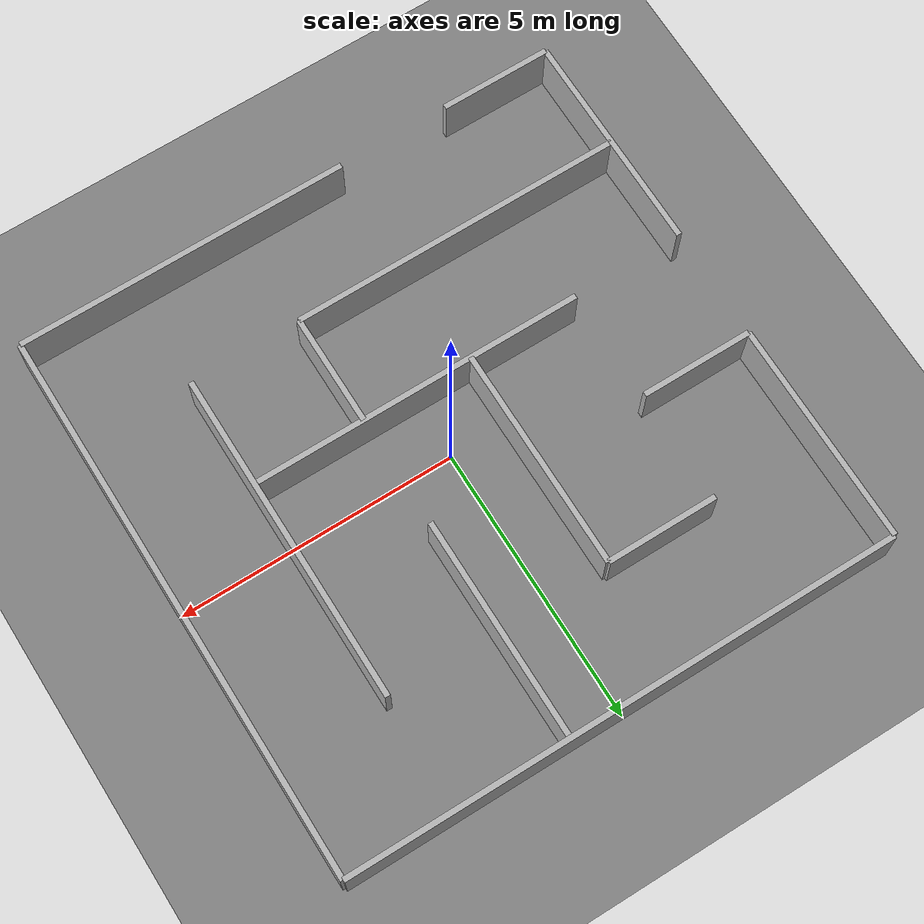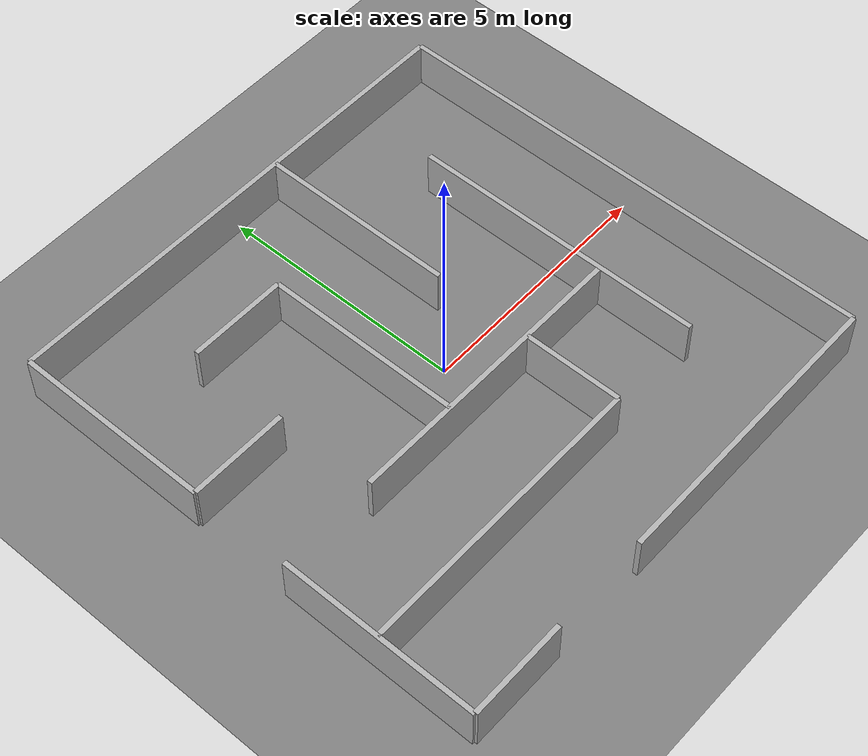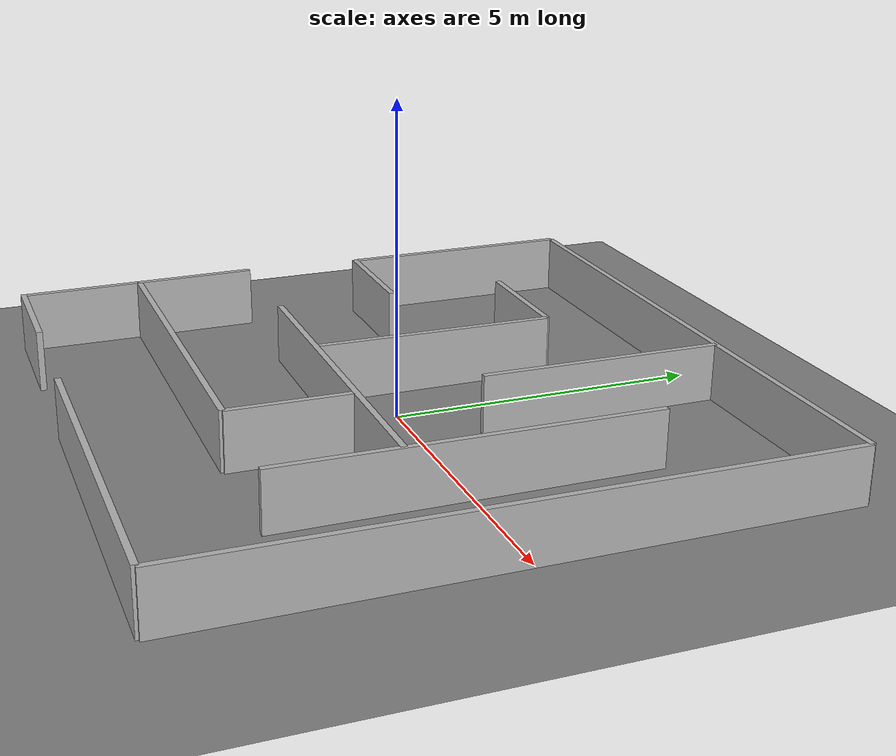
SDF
<sdf version="1.10">
 <world name="default">
  <gravity>0 0 -9.8000000000000007</gravity>
  <magnetic_field>6.0000000000000002e-06 2.3e-05 -4.1999999999999998e-05</magnetic_field>
  <atmosphere type="adiabatic"/>
  <physics name="default_physics" default="false" type="ode">
   <max_step_size>0.001</max_step_size>
   <real_time_factor>1</real_time_factor>
   <real_time_update_rate>1000</real_time_update_rate>
  </physics>
  <scene>
   <ambient>0.400000006 0.400000006 0.400000006 1</ambient>
   <background>0.699999988 0.699999988 0.699999988 1</background>
   <shadows>true</shadows>
  </scene>
  <audio><device>default</device></audio>
  <spherical_coordinates>
   <surface_model>EARTH_WGS84</surface_model>
   <latitude_deg>0</latitude_deg>
   <longitude_deg>0</longitude_deg>
   <elevation>0</elevation>
   <heading_deg>0</heading_deg>
  </spherical_coordinates>
  <model name="ground_plane">
   <static>true</static>
   <link name="link">
    <collision name="collision">
     <geometry><plane><normal>0 0 1</normal><size>100 100</size></plane></geometry>
     <surface>
      <contact><collide_bitmask>65535</collide_bitmask></contact>
      <friction><ode><mu>100</mu><mu2>50</mu2></ode></friction>
     </surface>
    </collision>
    <visual name="visual">
     <cast_shadows>false</cast_shadows>
     <geometry><plane><normal>0 0 1</normal><size>100 100</size></plane></geometry>
     <material>
      <ambient>0.5 0.5 0.5 1</ambient>
      <diffuse>0.5 0.5 0.5 1</diffuse>
      <specular>0.100000001 0.100000001 0.100000001 1</specular>
      <emissive>0 0 0 1</emissive>
     </material>
    </visual>
    <inertial>
     <mass>1</mass>
     <inertia><ixx>1</ixx><ixy>0</ixy><ixz>0</ixz><iyy>1</iyy><iyz>0</iyz><izz>1</izz></inertia>
    </inertial>
   </link>
  </model>
  <model name="s_maze">
   <link name="link_0_clone">
    <inertial>
     <mass>2000</mass>
     <inertia>
      <ixx>16833.299999999999</ixx>
      <ixy>0</ixy>
      <ixz>0</ixz>
      <iyy>168.333</iyy>
      <iyz>0</iyz>
      <izz>16668.299999999999</izz>
     </inertia>
    </inertial>
    <pose>5 0 0 0 0 0</pose>
    <visual name="visual">
     <geometry><box><size>0.10000000000000001 10 1</size></box></geometry>
     <material>
      <lighting>true</lighting>
      <shader type="vertex"><normal_map>__default__</normal_map></shader>
      <ambient>0.300000012 0.300000012 0.300000012 1</ambient>
      <diffuse>0.699999988 0.699999988 0.699999988 1</diffuse>
      <specular>0.00999999978 0.00999999978 0.00999999978 1</specular>
      <emissive>0 0 0 1</emissive>
     </material>
    </visual>
    <collision name="collision">
     <geometry><box><size>0.10000000000000001 10 1</size></box></geometry>
     <surface>
      <friction>
       <ode><mu>1</mu><mu2>1</mu2><fdir1>0 0 0</fdir1><slip1>0</slip1><slip2>0</slip2></ode>
       <torsional>
        <coefficient>1</coefficient>
        <patch_radius>0</patch_radius>
        <surface_radius>0</surface_radius>
        <use_patch_radius>true</use_patch_radius>
        <ode><slip>0</slip></ode>
       </torsional>
      </friction>
      <bounce><restitution_coefficient>0</restitution_coefficient><threshold>1000000</threshold></bounce>
      <contact>
       <collide_without_contact>false</collide_without_contact>
       <collide_without_contact_bitmask>1</collide_without_contact_bitmask>
       <collide_bitmask>1</collide_bitmask>
       <ode>
        <soft_cfm>0</soft_cfm>
        <soft_erp>0.20000000000000001</soft_erp>
        <kp>10000000000000</kp>
        <kd>1</kd>
        <max_vel>0.01</max_vel>
        <min_depth>0</min_depth>
       </ode>
       <bullet>
        <split_impulse>true</split_impulse>
        <split_impulse_penetration_threshold>-0.01</split_impulse_penetration_threshold>
        <soft_cfm>0</soft_cfm>
        <soft_erp>0.20000000000000001</soft_erp>
        <kp>10000000000000</kp>
        <kd>1</kd>
       </bullet>
      </contact>
     </surface>
    </collision>
   </link>
   <link name="link_0_clone_0_clone">
    <inertial>
     <mass>400</mass>
     <inertia>
      <ixx>166.667</ixx>
      <ixy>0</ixy>
      <ixz>0</ixz>
      <iyy>33.666699999999999</iyy>
      <iyz>0</iyz>
      <izz>133.667</izz>
     </inertia>
    </inertial>
    <pose>0.99999866355878742 -1.9999995539764424 -2.6095737237774586e-09 0 -4.3368086899420177e-19 0</pose>
    <visual name="visual">
     <geometry><box><size>0.10000000000000001 2 1</size></box></geometry>
     <material>
      <lighting>true</lighting>
      <shader type="vertex"><normal_map>__default__</normal_map></shader>
      <ambient>0.300000012 0.300000012 0.300000012 1</ambient>
      <diffuse>0.699999988 0.699999988 0.699999988 1</diffuse>
      <specular>0.00999999978 0.00999999978 0.00999999978 1</specular>
      <emissive>0 0 0 1</emissive>
     </material>
    </visual>
    <collision name="collision">
     <geometry><box><size>0.10000000000000001 2 1</size></box></geometry>
     <surface>
      <friction>
       <ode><mu>1</mu><mu2>1</mu2><fdir1>0 0 0</fdir1><slip1>0</slip1><slip2>0</slip2></ode>
       <torsional>
        <coefficient>1</coefficient>
        <patch_radius>0</patch_radius>
        <surface_radius>0</surface_radius>
        <use_patch_radius>true</use_patch_radius>
        <ode><slip>0</slip></ode>
       </torsional>
      </friction>
      <bounce><restitution_coefficient>0</restitution_coefficient><threshold>1000000</threshold></bounce>
      <contact>
       <collide_without_contact>false</collide_without_contact>
       <collide_without_contact_bitmask>1</collide_without_contact_bitmask>
       <collide_bitmask>1</collide_bitmask>
       <ode>
        <soft_cfm>0</soft_cfm>
        <soft_erp>0.20000000000000001</soft_erp>
        <kp>10000000000000</kp>
        <kd>1</kd>
        <max_vel>0.01</max_vel>
        <min_depth>0</min_depth>
       </ode>
       <bullet>
        <split_impulse>true</split_impulse>
        <split_impulse_penetration_threshold>-0.01</split_impulse_penetration_threshold>
        <soft_cfm>0</soft_cfm>
        <soft_erp>0.20000000000000001</soft_erp>
        <kp>10000000000000</kp>
        <kd>1</kd>
       </bullet>
      </contact>
     </surface>
    </collision>
   </link>
   <link name="link_0_clone_1_clone">
    <inertial>
     <mass>2000</mass>
     <inertia>
      <ixx>16833.299999999999</ixx>
      <ixy>0</ixy>
      <ixz>0</ixz>
      <iyy>168.333</iyy>
      <iyz>0</iyz>
      <izz>16668.299999999999</izz>
     </inertia>
    </inertial>
    <pose>8.1644602190067417e-10 5.0000022276348233 -1.0922676207947291e-08 -1.0925842687578042e-09 -7.0588231558850749e-11 1.5707997772368563</pose>
    <visual name="visual">
     <geometry><box><size>0.10000000000000001 10 1</size></box></geometry>
     <material>
      <lighting>true</lighting>
      <shader type="vertex"><normal_map>__default__</normal_map></shader>
      <ambient>0.300000012 0.300000012 0.300000012 1</ambient>
      <diffuse>0.699999988 0.699999988 0.699999988 1</diffuse>
      <specular>0.00999999978 0.00999999978 0.00999999978 1</specular>
      <emissive>0 0 0 1</emissive>
     </material>
    </visual>
    <collision name="collision">
     <geometry><box><size>0.10000000000000001 10 1</size></box></geometry>
     <surface>
      <friction>
       <ode><mu>1</mu><mu2>1</mu2><fdir1>0 0 0</fdir1><slip1>0</slip1><slip2>0</slip2></ode>
       <torsional>
        <coefficient>1</coefficient>
        <patch_radius>0</patch_radius>
        <surface_radius>0</surface_radius>
        <use_patch_radius>true</use_patch_radius>
        <ode><slip>0</slip></ode>
       </torsional>
      </friction>
      <bounce><restitution_coefficient>0</restitution_coefficient><threshold>1000000</threshold></bounce>
      <contact>
       <collide_without_contact>false</collide_without_contact>
       <collide_without_contact_bitmask>1</collide_without_contact_bitmask>
       <collide_bitmask>1</collide_bitmask>
       <ode>
        <soft_cfm>0</soft_cfm>
        <soft_erp>0.20000000000000001</soft_erp>
        <kp>10000000000000</kp>
        <kd>1</kd>
        <max_vel>0.01</max_vel>
        <min_depth>0</min_depth>
       </ode>
       <bullet>
        <split_impulse>true</split_impulse>
        <split_impulse_penetration_threshold>-0.01</split_impulse_penetration_threshold>
        <soft_cfm>0</soft_cfm>
        <soft_erp>0.20000000000000001</soft_erp>
        <kp>10000000000000</kp>
        <kd>1</kd>
       </bullet>
      </contact>
     </surface>
    </collision>
   </link>
   <link name="link_0_clone_1_clone_0">
    <inertial>
     <mass>1200</mass>
     <inertia><ixx>3700</ixx><ixy>0</ixy><ixz>0</ixz><iyy>101</iyy><iyz>0</iyz><izz>3601</izz></inertia>
    </inertial>
    <pose>-2.0000022273475881 -2.9999991081184154 -5.0774681126242172e-09 -1.0925842687578042e-09 -7.0588231558850749e-11 1.5707997772368563</pose>
    <visual name="visual">
     <geometry><box><size>0.10000000000000001 6 1</size></box></geometry>
     <material>
      <lighting>true</lighting>
      <shader type="vertex"><normal_map>__default__</normal_map></shader>
      <ambient>0.300000012 0.300000012 0.300000012 1</ambient>
      <diffuse>0.699999988 0.699999988 0.699999988 1</diffuse>
      <specular>0.00999999978 0.00999999978 0.00999999978 1</specular>
      <emissive>0 0 0 1</emissive>
     </material>
    </visual>
    <collision name="collision">
     <geometry><box><size>0.10000000000000001 6 1</size></box></geometry>
     <surface>
      <friction>
       <ode><mu>1</mu><mu2>1</mu2><fdir1>0 0 0</fdir1><slip1>0</slip1><slip2>0</slip2></ode>
       <torsional>
        <coefficient>1</coefficient>
        <patch_radius>0</patch_radius>
        <surface_radius>0</surface_radius>
        <use_patch_radius>true</use_patch_radius>
        <ode><slip>0</slip></ode>
       </torsional>
      </friction>
      <bounce><restitution_coefficient>0</restitution_coefficient><threshold>1000000</threshold></bounce>
      <contact>
       <collide_without_contact>false</collide_without_contact>
       <collide_without_contact_bitmask>1</collide_without_contact_bitmask>
       <collide_bitmask>1</collide_bitmask>
       <ode>
        <soft_cfm>0</soft_cfm>
        <soft_erp>0.20000000000000001</soft_erp>
        <kp>10000000000000</kp>
        <kd>1</kd>
        <max_vel>0.01</max_vel>
        <min_depth>0</min_depth>
       </ode>
       <bullet>
        <split_impulse>true</split_impulse>
        <split_impulse_penetration_threshold>-0.01</split_impulse_penetration_threshold>
        <soft_cfm>0</soft_cfm>
        <soft_erp>0.20000000000000001</soft_erp>
        <kp>10000000000000</kp>
        <kd>1</kd>
       </bullet>
      </contact>
     </surface>
    </collision>
   </link>
   <link name="link_0_clone_1_clone_0_clone">
    <inertial>
     <mass>1200</mass>
     <inertia><ixx>3700</ixx><ixy>0</ixy><ixz>0</ixz><iyy>101</iyy><iyz>0</iyz><izz>3601</izz></inertia>
    </inertial>
    <pose>-1.336277922536766e-06 -0.99999910844947815 -4.7941090541847586e-09 -1.0925842687578042e-09 -7.0588231558850749e-11 1.5707997772368563</pose>
    <visual name="visual">
     <geometry><box><size>0.10000000000000001 6 1</size></box></geometry>
     <material>
      <lighting>true</lighting>
      <shader type="vertex"><normal_map>__default__</normal_map></shader>
      <ambient>0.300000012 0.300000012 0.300000012 1</ambient>
      <diffuse>0.699999988 0.699999988 0.699999988 1</diffuse>
      <specular>0.00999999978 0.00999999978 0.00999999978 1</specular>
      <emissive>0 0 0 1</emissive>
     </material>
    </visual>
    <collision name="collision">
     <geometry><box><size>0.10000000000000001 6 1</size></box></geometry>
     <surface>
      <friction>
       <ode><mu>1</mu><mu2>1</mu2><fdir1>0 0 0</fdir1><slip1>0</slip1><slip2>0</slip2></ode>
       <torsional>
        <coefficient>1</coefficient>
        <patch_radius>0</patch_radius>
        <surface_radius>0</surface_radius>
        <use_patch_radius>true</use_patch_radius>
        <ode><slip>0</slip></ode>
       </torsional>
      </friction>
      <bounce><restitution_coefficient>0</restitution_coefficient><threshold>1000000</threshold></bounce>
      <contact>
       <collide_without_contact>false</collide_without_contact>
       <collide_without_contact_bitmask>1</collide_without_contact_bitmask>
       <collide_bitmask>1</collide_bitmask>
       <ode>
        <soft_cfm>0</soft_cfm>
        <soft_erp>0.20000000000000001</soft_erp>
        <kp>10000000000000</kp>
        <kd>1</kd>
        <max_vel>0.01</max_vel>
        <min_depth>0</min_depth>
       </ode>
       <bullet>
        <split_impulse>true</split_impulse>
        <split_impulse_penetration_threshold>-0.01</split_impulse_penetration_threshold>
        <soft_cfm>0</soft_cfm>
        <soft_erp>0.20000000000000001</soft_erp>
        <kp>10000000000000</kp>
        <kd>1</kd>
       </bullet>
      </contact>
     </surface>
    </collision>
   </link>
   <link name="link_0_clone_1_clone_0_clone_0">
    <inertial>
     <mass>1200</mass>
     <inertia><ixx>3700</ixx><ixy>0</ixy><ixz>0</ixz><iyy>101</iyy><iyz>0</iyz><izz>3601</izz></inertia>
    </inertial>
    <pose>1.9999982176973743 -5.0000004448648401 1.6178171580172318e-09 -0.0045880010922776304 -0.0052240000698051516 1.5714997773191681</pose>
    <visual name="visual">
     <geometry><box><size>0.10000000000000001 6 1</size></box></geometry>
     <material>
      <lighting>true</lighting>
      <shader type="vertex"><normal_map>__default__</normal_map></shader>
      <ambient>0.300000012 0.300000012 0.300000012 1</ambient>
      <diffuse>0.699999988 0.699999988 0.699999988 1</diffuse>
      <specular>0.00999999978 0.00999999978 0.00999999978 1</specular>
      <emissive>0 0 0 1</emissive>
     </material>
    </visual>
    <collision name="collision">
     <geometry><box><size>0.10000000000000001 6 1</size></box></geometry>
     <surface>
      <friction>
       <ode><mu>1</mu><mu2>1</mu2><fdir1>0 0 0</fdir1><slip1>0</slip1><slip2>0</slip2></ode>
       <torsional>
        <coefficient>1</coefficient>
        <patch_radius>0</patch_radius>
        <surface_radius>0</surface_radius>
        <use_patch_radius>true</use_patch_radius>
        <ode><slip>0</slip></ode>
       </torsional>
      </friction>
      <bounce><restitution_coefficient>0</restitution_coefficient><threshold>1000000</threshold></bounce>
      <contact>
       <collide_without_contact>false</collide_without_contact>
       <collide_without_contact_bitmask>1</collide_without_contact_bitmask>
       <collide_bitmask>1</collide_bitmask>
       <ode>
        <soft_cfm>0</soft_cfm>
        <soft_erp>0.20000000000000001</soft_erp>
        <kp>10000000000000</kp>
        <kd>1</kd>
        <max_vel>0.01</max_vel>
        <min_depth>0</min_depth>
       </ode>
       <bullet>
        <split_impulse>true</split_impulse>
        <split_impulse_penetration_threshold>-0.01</split_impulse_penetration_threshold>
        <soft_cfm>0</soft_cfm>
        <soft_erp>0.20000000000000001</soft_erp>
        <kp>10000000000000</kp>
        <kd>1</kd>
       </bullet>
      </contact>
     </surface>
    </collision>
   </link>
   <link name="link_0_clone_1_clone_0_clone_clone">
    <inertial>
     <mass>400</mass>
     <inertia>
      <ixx>166.667</ixx>
      <ixy>0</ixy>
      <ixz>0</ixz>
      <iyy>33.666699999999999</iyy>
      <iyz>0</iyz>
      <izz>133.667</izz>
     </inertia>
    </inertial>
    <pose>-2.0000008902532191 3.0000022279658838 -1.1206035377409052e-08 -1.0925842687578042e-09 -7.0588231558850749e-11 1.5707997772368563</pose>
    <visual name="visual">
     <geometry><box><size>0.10000000000000001 2 1</size></box></geometry>
     <material>
      <lighting>true</lighting>
      <shader type="vertex"><normal_map>__default__</normal_map></shader>
      <ambient>0.300000012 0.300000012 0.300000012 1</ambient>
      <diffuse>0.699999988 0.699999988 0.699999988 1</diffuse>
      <specular>0.00999999978 0.00999999978 0.00999999978 1</specular>
      <emissive>0 0 0 1</emissive>
     </material>
    </visual>
    <collision name="collision">
     <geometry><box><size>0.10000000000000001 2 1</size></box></geometry>
     <surface>
      <friction>
       <ode><mu>1</mu><mu2>1</mu2><fdir1>0 0 0</fdir1><slip1>0</slip1><slip2>0</slip2></ode>
       <torsional>
        <coefficient>1</coefficient>
        <patch_radius>0</patch_radius>
        <surface_radius>0</surface_radius>
        <use_patch_radius>true</use_patch_radius>
        <ode><slip>0</slip></ode>
       </torsional>
      </friction>
      <bounce><restitution_coefficient>0</restitution_coefficient><threshold>1000000</threshold></bounce>
      <contact>
       <collide_without_contact>false</collide_without_contact>
       <collide_without_contact_bitmask>1</collide_without_contact_bitmask>
       <collide_bitmask>1</collide_bitmask>
       <ode>
        <soft_cfm>0</soft_cfm>
        <soft_erp>0.20000000000000001</soft_erp>
        <kp>10000000000000</kp>
        <kd>1</kd>
        <max_vel>0.01</max_vel>
        <min_depth>0</min_depth>
       </ode>
       <bullet>
        <split_impulse>true</split_impulse>
        <split_impulse_penetration_threshold>-0.01</split_impulse_penetration_threshold>
        <soft_cfm>0</soft_cfm>
        <soft_erp>0.20000000000000001</soft_erp>
        <kp>10000000000000</kp>
        <kd>1</kd>
       </bullet>
      </contact>
     </surface>
    </collision>
   </link>
   <link name="link_0_clone_1_clone_0_clone_clone_clone">
    <inertial>
     <mass>400</mass>
     <inertia>
      <ixx>166.667</ixx>
      <ixy>0</ixy>
      <ixz>0</ixz>
      <iyy>33.666699999999999</iyy>
      <iyz>0</iyz>
      <izz>133.667</izz>
     </inertia>
    </inertial>
    <pose>-4.0000017813228883 1.0000022282969478 -1.1489394324826208e-08 -1.0925842687578042e-09 -7.0588231558850749e-11 1.5707997772368563</pose>
    <visual name="visual">
     <geometry><box><size>0.10000000000000001 2 1</size></box></geometry>
     <material>
      <lighting>true</lighting>
      <shader type="vertex"><normal_map>__default__</normal_map></shader>
      <ambient>0.300000012 0.300000012 0.300000012 1</ambient>
      <diffuse>0.699999988 0.699999988 0.699999988 1</diffuse>
      <specular>0.00999999978 0.00999999978 0.00999999978 1</specular>
      <emissive>0 0 0 1</emissive>
     </material>
    </visual>
    <collision name="collision">
     <geometry><box><size>0.10000000000000001 2 1</size></box></geometry>
     <surface>
      <friction>
       <ode><mu>1</mu><mu2>1</mu2><fdir1>0 0 0</fdir1><slip1>0</slip1><slip2>0</slip2></ode>
       <torsional>
        <coefficient>1</coefficient>
        <patch_radius>0</patch_radius>
        <surface_radius>0</surface_radius>
        <use_patch_radius>true</use_patch_radius>
        <ode><slip>0</slip></ode>
       </torsional>
      </friction>
      <bounce><restitution_coefficient>0</restitution_coefficient><threshold>1000000</threshold></bounce>
      <contact>
       <collide_without_contact>false</collide_without_contact>
       <collide_without_contact_bitmask>1</collide_without_contact_bitmask>
       <collide_bitmask>1</collide_bitmask>
       <ode>
        <soft_cfm>0</soft_cfm>
        <soft_erp>0.20000000000000001</soft_erp>
        <kp>10000000000000</kp>
        <kd>1</kd>
        <max_vel>0.01</max_vel>
        <min_depth>0</min_depth>
       </ode>
       <bullet>
        <split_impulse>true</split_impulse>
        <split_impulse_penetration_threshold>-0.01</split_impulse_penetration_threshold>
        <soft_cfm>0</soft_cfm>
        <soft_erp>0.20000000000000001</soft_erp>
        <kp>10000000000000</kp>
        <kd>1</kd>
       </bullet>
      </contact>
     </surface>
    </collision>
   </link>
   <link name="link_0_clone_1_clone_0_clone_clone_clone_0">
    <inertial>
     <mass>400</mass>
     <inertia>
      <ixx>166.667</ixx>
      <ixy>0</ixy>
      <ixz>0</ixz>
      <iyy>33.666699999999999</iyy>
      <iyz>0</iyz>
      <izz>133.667</izz>
     </inertia>
    </inertial>
    <pose>-4.0000031184172542 -4.9999991077873522 -5.3608270600413732e-09 -0.0045880010922776304 -0.0052240000698051516 1.5714997773191681</pose>
    <visual name="visual">
     <geometry><box><size>0.10000000000000001 2 1</size></box></geometry>
     <material>
      <lighting>true</lighting>
      <shader type="vertex"><normal_map>__default__</normal_map></shader>
      <ambient>0.300000012 0.300000012 0.300000012 1</ambient>
      <diffuse>0.699999988 0.699999988 0.699999988 1</diffuse>
      <specular>0.00999999978 0.00999999978 0.00999999978 1</specular>
      <emissive>0 0 0 1</emissive>
     </material>
    </visual>
    <collision name="collision">
     <geometry><box><size>0.10000000000000001 2 1</size></box></geometry>
     <surface>
      <friction>
       <ode><mu>1</mu><mu2>1</mu2><fdir1>0 0 0</fdir1><slip1>0</slip1><slip2>0</slip2></ode>
       <torsional>
        <coefficient>1</coefficient>
        <patch_radius>0</patch_radius>
        <surface_radius>0</surface_radius>
        <use_patch_radius>true</use_patch_radius>
        <ode><slip>0</slip></ode>
       </torsional>
      </friction>
      <bounce><restitution_coefficient>0</restitution_coefficient><threshold>1000000</threshold></bounce>
      <contact>
       <collide_without_contact>false</collide_without_contact>
       <collide_without_contact_bitmask>1</collide_without_contact_bitmask>
       <collide_bitmask>1</collide_bitmask>
       <ode>
        <soft_cfm>0</soft_cfm>
        <soft_erp>0.20000000000000001</soft_erp>
        <kp>10000000000000</kp>
        <kd>1</kd>
        <max_vel>0.01</max_vel>
        <min_depth>0</min_depth>
       </ode>
       <bullet>
        <split_impulse>true</split_impulse>
        <split_impulse_penetration_threshold>-0.01</split_impulse_penetration_threshold>
        <soft_cfm>0</soft_cfm>
        <soft_erp>0.20000000000000001</soft_erp>
        <kp>10000000000000</kp>
        <kd>1</kd>
       </bullet>
      </contact>
     </surface>
    </collision>
   </link>
   <link name="link_0_clone_2">
    <inertial>
     <mass>1200</mass>
     <inertia><ixx>3700</ixx><ixy>0</ixy><ixz>0</ixz><iyy>101</iyy><iyz>0</iyz><izz>3601</izz></inertia>
    </inertial>
    <pose>2.9999995546284541 4.4569249535442168e-07 -2.3262147208491513e-09 0 -4.3368086899420177e-19 0</pose>
    <visual name="visual">
     <geometry><box><size>0.10000000000000001 6 1</size></box></geometry>
     <material>
      <lighting>true</lighting>
      <shader type="vertex"><normal_map>__default__</normal_map></shader>
      <ambient>0.300000012 0.300000012 0.300000012 1</ambient>
      <diffuse>0.699999988 0.699999988 0.699999988 1</diffuse>
      <specular>0.00999999978 0.00999999978 0.00999999978 1</specular>
      <emissive>0 0 0 1</emissive>
     </material>
    </visual>
    <collision name="collision">
     <geometry><box><size>0.10000000000000001 6 1</size></box></geometry>
     <surface>
      <friction>
       <ode><mu>1</mu><mu2>1</mu2><fdir1>0 0 0</fdir1><slip1>0</slip1><slip2>0</slip2></ode>
       <torsional>
        <coefficient>1</coefficient>
        <patch_radius>0</patch_radius>
        <surface_radius>0</surface_radius>
        <use_patch_radius>true</use_patch_radius>
        <ode><slip>0</slip></ode>
       </torsional>
      </friction>
      <bounce><restitution_coefficient>0</restitution_coefficient><threshold>1000000</threshold></bounce>
      <contact>
       <collide_without_contact>false</collide_without_contact>
       <collide_without_contact_bitmask>1</collide_without_contact_bitmask>
       <collide_bitmask>1</collide_bitmask>
       <ode>
        <soft_cfm>0</soft_cfm>
        <soft_erp>0.20000000000000001</soft_erp>
        <kp>10000000000000</kp>
        <kd>1</kd>
        <max_vel>0.01</max_vel>
        <min_depth>0</min_depth>
       </ode>
       <bullet>
        <split_impulse>true</split_impulse>
        <split_impulse_penetration_threshold>-0.01</split_impulse_penetration_threshold>
        <soft_cfm>0</soft_cfm>
        <soft_erp>0.20000000000000001</soft_erp>
        <kp>10000000000000</kp>
        <kd>1</kd>
       </bullet>
      </contact>
     </surface>
    </collision>
   </link>
   <link name="link_0_clone_2_clone">
    <inertial>
     <mass>0.188114</mass>
     <inertia>
      <ixx>0.0313523</ixx>
      <ixy>0</ixy>
      <ixz>0</ixz>
      <iyy>0.016230899999999999</iyy>
      <iyz>0</iyz>
      <izz>0.016230899999999999</izz>
     </inertia>
    </inertial>
    <pose>-1.0000011132655704 1.0000015597582044 -8.0000721047746026e-09 0 -4.3368086899420177e-19 0</pose>
    <visual name="visual">
     <geometry><box><size>0.10000000000000001 4 1</size></box></geometry>
     <material>
      <lighting>true</lighting>
      <shader type="vertex"><normal_map>__default__</normal_map></shader>
      <ambient>0.300000012 0.300000012 0.300000012 1</ambient>
      <diffuse>0.699999988 0.699999988 0.699999988 1</diffuse>
      <specular>0.00999999978 0.00999999978 0.00999999978 1</specular>
      <emissive>0 0 0 1</emissive>
     </material>
    </visual>
    <collision name="collision">
     <geometry><box><size>0.10000000000000001 4 1</size></box></geometry>
     <surface>
      <friction>
       <ode><mu>1</mu><mu2>1</mu2><fdir1>0 0 0</fdir1><slip1>0</slip1><slip2>0</slip2></ode>
       <torsional>
        <coefficient>1</coefficient>
        <patch_radius>0</patch_radius>
        <surface_radius>0</surface_radius>
        <use_patch_radius>true</use_patch_radius>
        <ode><slip>0</slip></ode>
       </torsional>
      </friction>
      <bounce><restitution_coefficient>0</restitution_coefficient><threshold>1000000</threshold></bounce>
      <contact>
       <collide_without_contact>false</collide_without_contact>
       <collide_without_contact_bitmask>1</collide_without_contact_bitmask>
       <collide_bitmask>1</collide_bitmask>
       <ode>
        <soft_cfm>0</soft_cfm>
        <soft_erp>0.20000000000000001</soft_erp>
        <kp>10000000000000</kp>
        <kd>1</kd>
        <max_vel>0.01</max_vel>
        <min_depth>0</min_depth>
       </ode>
       <bullet>
        <split_impulse>true</split_impulse>
        <split_impulse_penetration_threshold>-0.01</split_impulse_penetration_threshold>
        <soft_cfm>0</soft_cfm>
        <soft_erp>0.20000000000000001</soft_erp>
        <kp>10000000000000</kp>
        <kd>1</kd>
       </bullet>
      </contact>
     </surface>
    </collision>
   </link>
   <link name="link_0_clone_2_clone_clone">
    <inertial>
     <mass>800</mass>
     <inertia>
      <ixx>1133.3299999999999</ixx>
      <ixy>0</ixy>
      <ixz>0</ixz>
      <iyy>67.333299999999994</iyy>
      <iyz>0</iyz>
      <izz>1067.3299999999999</izz>
     </inertia>
    </inertial>
    <pose>0.99999977780409455 3.0000015594271408 -7.7167132128685978e-09 0 -4.3368086899420177e-19 0</pose>
    <visual name="visual">
     <geometry><box><size>0.10000000000000001 4 1</size></box></geometry>
     <material>
      <lighting>true</lighting>
      <shader type="vertex"><normal_map>__default__</normal_map></shader>
      <ambient>0.300000012 0.300000012 0.300000012 1</ambient>
      <diffuse>0.699999988 0.699999988 0.699999988 1</diffuse>
      <specular>0.00999999978 0.00999999978 0.00999999978 1</specular>
      <emissive>0 0 0 1</emissive>
     </material>
    </visual>
    <collision name="collision">
     <geometry><box><size>0.10000000000000001 4 1</size></box></geometry>
     <surface>
      <friction>
       <ode><mu>1</mu><mu2>1</mu2><fdir1>0 0 0</fdir1><slip1>0</slip1><slip2>0</slip2></ode>
       <torsional>
        <coefficient>1</coefficient>
        <patch_radius>0</patch_radius>
        <surface_radius>0</surface_radius>
        <use_patch_radius>true</use_patch_radius>
        <ode><slip>0</slip></ode>
       </torsional>
      </friction>
      <bounce><restitution_coefficient>0</restitution_coefficient><threshold>1000000</threshold></bounce>
      <contact>
       <collide_without_contact>false</collide_without_contact>
       <collide_without_contact_bitmask>1</collide_without_contact_bitmask>
       <collide_bitmask>1</collide_bitmask>
       <ode>
        <soft_cfm>0</soft_cfm>
        <soft_erp>0.20000000000000001</soft_erp>
        <kp>10000000000000</kp>
        <kd>1</kd>
        <max_vel>0.01</max_vel>
        <min_depth>0</min_depth>
       </ode>
       <bullet>
        <split_impulse>true</split_impulse>
        <split_impulse_penetration_threshold>-0.01</split_impulse_penetration_threshold>
        <soft_cfm>0</soft_cfm>
        <soft_erp>0.20000000000000001</soft_erp>
        <kp>10000000000000</kp>
        <kd>1</kd>
       </bullet>
      </contact>
     </surface>
    </collision>
   </link>
   <link name="link_0_clone_2_clone_clone_0">
    <inertial>
     <mass>800</mass>
     <inertia>
      <ixx>1133.3299999999999</ixx>
      <ixy>0</ixy>
      <ixz>0</ixz>
      <iyy>67.333299999999994</iyy>
      <iyz>0</iyz>
      <izz>1067.3299999999999</izz>
     </inertia>
    </inertial>
    <pose>-5.0000015583105366 3.0000028965046268 -1.4695357652971808e-08 0.0052239999999590175 -0.0045879999992737425 0.00068100014909972635</pose>
    <visual name="visual">
     <geometry><box><size>0.10000000000000001 4 1</size></box></geometry>
     <material>
      <lighting>true</lighting>
      <shader type="vertex"><normal_map>__default__</normal_map></shader>
      <ambient>0.300000012 0.300000012 0.300000012 1</ambient>
      <diffuse>0.699999988 0.699999988 0.699999988 1</diffuse>
      <specular>0.00999999978 0.00999999978 0.00999999978 1</specular>
      <emissive>0 0 0 1</emissive>
     </material>
    </visual>
    <collision name="collision">
     <geometry><box><size>0.10000000000000001 4 1</size></box></geometry>
     <surface>
      <friction>
       <ode><mu>1</mu><mu2>1</mu2><fdir1>0 0 0</fdir1><slip1>0</slip1><slip2>0</slip2></ode>
       <torsional>
        <coefficient>1</coefficient>
        <patch_radius>0</patch_radius>
        <surface_radius>0</surface_radius>
        <use_patch_radius>true</use_patch_radius>
        <ode><slip>0</slip></ode>
       </torsional>
      </friction>
      <bounce><restitution_coefficient>0</restitution_coefficient><threshold>1000000</threshold></bounce>
      <contact>
       <collide_without_contact>false</collide_without_contact>
       <collide_without_contact_bitmask>1</collide_without_contact_bitmask>
       <collide_bitmask>1</collide_bitmask>
       <ode>
        <soft_cfm>0</soft_cfm>
        <soft_erp>0.20000000000000001</soft_erp>
        <kp>10000000000000</kp>
        <kd>1</kd>
        <max_vel>0.01</max_vel>
        <min_depth>0</min_depth>
       </ode>
       <bullet>
        <split_impulse>true</split_impulse>
        <split_impulse_penetration_threshold>-0.01</split_impulse_penetration_threshold>
        <soft_cfm>0</soft_cfm>
        <soft_erp>0.20000000000000001</soft_erp>
        <kp>10000000000000</kp>
        <kd>1</kd>
       </bullet>
      </contact>
     </surface>
    </collision>
   </link>
   <link name="link_0_clone_2_clone_clone_0_clone">
    <inertial>
     <mass>800</mass>
     <inertia>
      <ixx>1133.3299999999999</ixx>
      <ixy>0</ixy>
      <ixz>0</ixz>
      <iyy>67.333299999999994</iyy>
      <iyz>0</iyz>
      <izz>1067.3299999999999</izz>
     </inertia>
    </inertial>
    <pose>-5.0000028954049034 -2.9999984395796719 -8.5667903326758221e-09 0.010444999999918936 -0.0091789999985469745 0.001338000298292098</pose>
    <visual name="visual">
     <geometry><box><size>0.10000000000000001 4 1</size></box></geometry>
     <material>
      <lighting>true</lighting>
      <shader type="vertex"><normal_map>__default__</normal_map></shader>
      <ambient>0.300000012 0.300000012 0.300000012 1</ambient>
      <diffuse>0.699999988 0.699999988 0.699999988 1</diffuse>
      <specular>0.00999999978 0.00999999978 0.00999999978 1</specular>
      <emissive>0 0 0 1</emissive>
     </material>
    </visual>
    <collision name="collision">
     <geometry><box><size>0.10000000000000001 4 1</size></box></geometry>
     <surface>
      <friction>
       <ode><mu>1</mu><mu2>1</mu2><fdir1>0 0 0</fdir1><slip1>0</slip1><slip2>0</slip2></ode>
       <torsional>
        <coefficient>1</coefficient>
        <patch_radius>0</patch_radius>
        <surface_radius>0</surface_radius>
        <use_patch_radius>true</use_patch_radius>
        <ode><slip>0</slip></ode>
       </torsional>
      </friction>
      <bounce><restitution_coefficient>0</restitution_coefficient><threshold>1000000</threshold></bounce>
      <contact>
       <collide_without_contact>false</collide_without_contact>
       <collide_without_contact_bitmask>1</collide_without_contact_bitmask>
       <collide_bitmask>1</collide_bitmask>
       <ode>
        <soft_cfm>0</soft_cfm>
        <soft_erp>0.20000000000000001</soft_erp>
        <kp>10000000000000</kp>
        <kd>1</kd>
        <max_vel>0.01</max_vel>
        <min_depth>0</min_depth>
       </ode>
       <bullet>
        <split_impulse>true</split_impulse>
        <split_impulse_penetration_threshold>-0.01</split_impulse_penetration_threshold>
        <soft_cfm>0</soft_cfm>
        <soft_erp>0.20000000000000001</soft_erp>
        <kp>10000000000000</kp>
        <kd>1</kd>
       </bullet>
      </contact>
     </surface>
    </collision>
   </link>
   <static>false</static>
   <pose>0.0012899999999999999 -0.0034459999999999998 0.44831900000000002 -0.0052270000000000007 0.0045839999999999995 -0.0007049999999999999</pose>
  </model>
  <light name="sun" type="directional">
   <pose>0 0 10 0 0 0</pose>
   <intensity>1</intensity>
   <direction>-0.5 0.10000000000000001 -0.90000000000000002</direction>
   <diffuse>0.800000012 0.800000012 0.800000012 1</diffuse>
   <specular>0.200000003 0.200000003 0.200000003 1</specular>
   <attenuation>
    <range>1000</range>
    <linear>0.01</linear>
    <constant>0.90000000000000002</constant>
    <quadratic>0.001</quadratic>
   </attenuation>
   <spot><inner_angle>0</inner_angle><outer_angle>0</outer_angle><falloff>0</falloff></spot>
  </light>
 </world>
</sdf>
